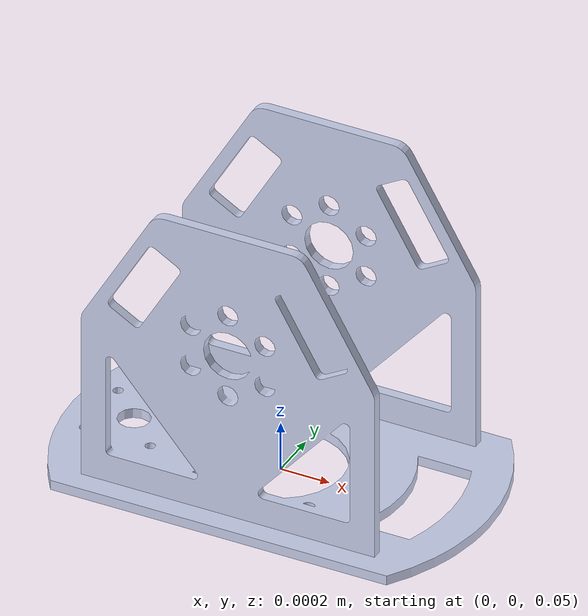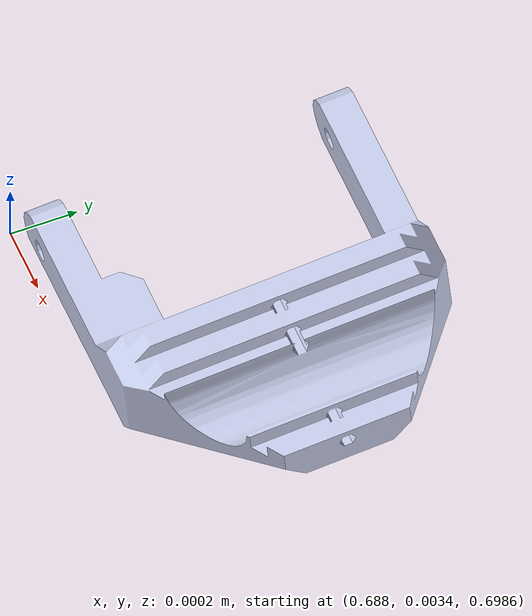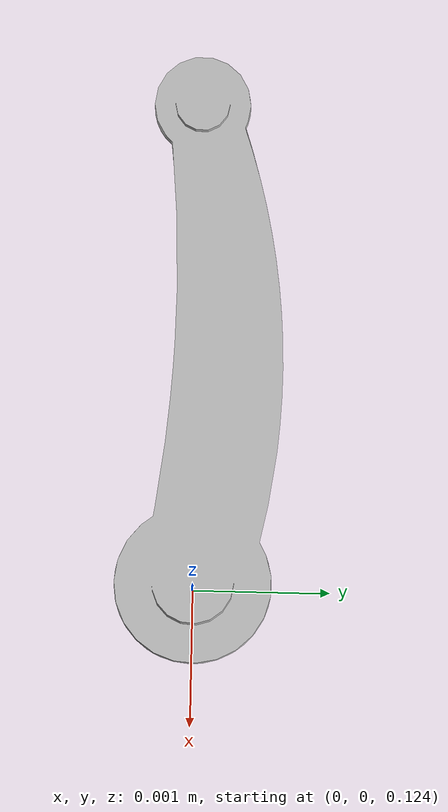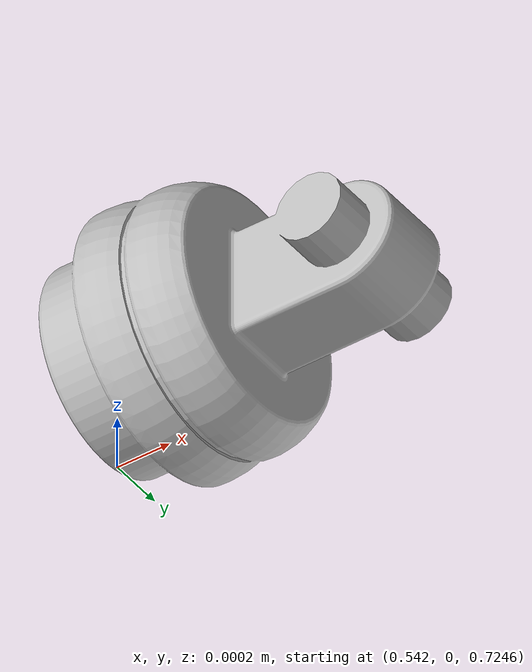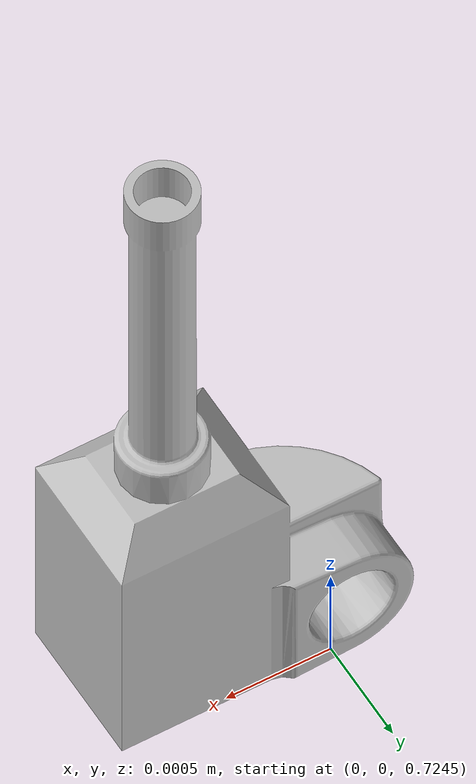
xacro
<?xml version="1.0"?>

<robot xmlns:xacro="http://www.ros.org/wiki/xacro" name="arduinobot">

  <link name="world"/>

  <link
    name="base_link">
    <inertial>
      <origin
        xyz="1.764E-11 -9.0343E-12 0.026843"
        rpy="0 0 0" />
      <mass
        value="0.26486" />
      <inertia
        ixx="0.00022452"
        ixy="1.6313E-20"
        ixz="-7.3936E-16"
        iyy="0.00022452"
        iyz="1.9242E-16"
        izz="0.00042241" />
    </inertial>
    <visual>
      <origin
        xyz="0 0 0"
        rpy="0 0 0" />
      <geometry>
        <mesh
          filename="package://arduinobot_description/meshes/base_link.STL" scale="0.01 0.01 0.01"/>
      </geometry>
      <material
        name="">
        <color
          rgba="0.75294 0.75294 0.75294 1" />
      </material>
    </visual>
    <collision>
      <origin
        xyz="0 0 0"
        rpy="0 0 0" />
      <geometry>
        <mesh
          filename="package://arduinobot_description/meshes/base_link.STL" scale="0.01 0.01 0.01"/>
      </geometry>
    </collision>
  </link>
  <joint name="virtual_joint" type="fixed">
    <parent link="world"/>
    <child link="base_link"/>
    <origin xyz="0 0 0" rpy="0 0 0"/>
  </joint>
  <link
    name="link_1">
    <inertial>
      <origin
        xyz="-0.0015612 -6.5919E-17 0.037769"
        rpy="0 0 0" />
      <mass
        value="0.12637" />
      <inertia
        ixx="0.00013841"
        ixy="-3.7232E-21"
        ixz="7.3657E-14"
        iyy="0.00028501"
        iyz="7.3636E-20"
        izz="0.00024244" />
    </inertial>
    <visual>
      <origin
        xyz="0 0 0"
        rpy="0 0 0" />
      <geometry>
        <mesh
          filename="package://arduinobot_description/meshes/link_1.STL" scale="0.01 0.01 0.01"/>
      </geometry>
      <material
        name="">
        <color
          rgba="0.79216 0.81961 0.93333 1" />
      </material>
    </visual>
    <collision>
      <origin
        xyz="0 0 0"
        rpy="0 0 0" />
      <geometry>
        <mesh
          filename="package://arduinobot_description/meshes/link_1.STL" scale="0.01 0.01 0.01"/>
      </geometry>
    </collision>
  </link>
  <joint
    name="joint_1"
    type="revolute">
    <origin
      xyz="0 0 0.05"
      rpy="0 0 0" />
    <parent
      link="base_link" />
    <child
      link="link_1" />
    <axis
      xyz="0 0 1" />
    <limit
      lower="-1.57"
      upper="1.57"
      effort="0"
      velocity="0" />
  </joint>
  <link
    name="link_2">
    <inertial>
      <origin
        xyz="-0.0024031 -0.2305 -1.2661E-14"
        rpy="0 0 0" />
      <mass
        value="1.5673" />
      <inertia
        ixx="0.012457"
        ixy="-0.00028372"
        ixz="2.8287E-19"
        iyy="0.0017814"
        iyz="2.9045E-18"
        izz="0.013454" />
    </inertial>
    <visual>
      <origin
        xyz="0 0 0"
        rpy="0 0 0" />
      <geometry>
        <mesh
          filename="package://arduinobot_description/meshes/link_2.STL" scale="0.01 0.01 0.01"/>
      </geometry>
      <material
        name="">
        <color
          rgba="0.75294 0.75294 0.75294 1" />
      </material>
    </visual>
    <collision>
      <origin
        xyz="0 0 0"
        rpy="0 0 0" />
      <geometry>
        <mesh
          filename="package://arduinobot_description/meshes/link_2.STL" scale="0.01 0.01 0.01"/>
      </geometry>
    </collision>
  </link>
  <joint
    name="joint_2"
    type="revolute">
    <origin
      xyz="0 0 0.075"
      rpy="-1.5708 0 0" />
    <parent
      link="link_1" />
    <child
      link="link_2" />
    <axis
      xyz="0 0 1" />
    <limit
      lower="0"
      upper="1.57"
      effort="0"
      velocity="0" />
  </joint>
  <link
    name="link_3">
    <inertial>
      <origin
        xyz="0.000235 0.053565 1.5898E-08"
        rpy="0 0 0" />
      <mass
        value="0.25418" />
      <inertia
        ixx="0.00065488"
        ixy="1.2999E-06"
        ixz="-2.9375E-09"
        iyy="0.00020721"
        iyz="3.0298E-14"
        izz="0.00067444" />
    </inertial>
    <visual>
      <origin
        xyz="0 0 0"
        rpy="0 0 0" />
      <geometry>
        <mesh
          filename="package://arduinobot_description/meshes/link_3.STL" scale="0.01 0.01 0.01"/>
      </geometry>
      <material
        name="">
        <color
          rgba="0.75294 0.75294 0.75294 1" />
      </material>
    </visual>
    <collision>
      <origin
        xyz="0 0 0"
        rpy="0 0 0" />
      <geometry>
        <mesh
          filename="package://arduinobot_description/meshes/link_3.STL" scale="0.01 0.01 0.01"/>
      </geometry>
    </collision>
  </link>
  <joint
    name="joint_3"
    type="revolute">
    <origin
      xyz="0 -0.6 0"
      rpy="0 0 -1.5708" />
    <parent
      link="link_2" />
    <child
      link="link_3" />
    <axis
      xyz="0 0 1" />
    <limit
      lower="0"
      upper="1.57"
      effort="0"
      velocity="0" />
  </joint>
  <link
    name="link_4">
    <inertial>
      <origin
        xyz="3.1261E-09 -2.3791E-09 0.24749"
        rpy="0 0 0" />
      <mass
        value="0.1198" />
      <inertia
        ixx="0.0012832"
        ixy="3.0175E-07"
        ixz="-1.0095E-10"
        iyy="0.0012798"
        iyz="-5.5432E-11"
        izz="4.2803E-05" />
    </inertial>
    <visual>
      <origin
        xyz="0 0 0"
        rpy="0 0 0" />
      <geometry>
        <mesh
          filename="package://arduinobot_description/meshes/link_4.STL" scale="0.01 0.01 0.01"/>
      </geometry>
      <material
        name="">
        <color
          rgba="0.75294 0.75294 0.75294 1" />
      </material>
    </visual>
    <collision>
      <origin
        xyz="0 0 0"
        rpy="0 0 0" />
      <geometry>
        <mesh
          filename="package://arduinobot_description/meshes/link_4.STL" scale="0.01 0.01 0.01"/>
      </geometry>
    </collision>
  </link>
  <joint
    name="joint_4"
    type="continuous">
    <origin
      xyz="0 0.096935 0"
      rpy="-1.5708 0 0" />
    <parent
      link="link_3" />
    <child
      link="link_4" />
    <axis
      xyz="0 0 -1" />
  </joint>
  <link
    name="link_5">
    <inertial>
      <origin
        xyz="-0.012354 0.086588 0.0010814"
        rpy="0 0 0" />
      <mass
        value="0.16939" />
      <inertia
        ixx="6.9757E-05"
        ixy="1.0166E-07"
        ixz="2.5517E-06"
        iyy="0.00014204"
        iyz="-9.0142E-09"
        izz="9.8684E-05" />
    </inertial>
    <visual>
      <origin
        xyz="0 0 0"
        rpy="0 0 0" />
      <geometry>
        <mesh
          filename="package://arduinobot_description/meshes/link_5.STL" scale="0.01 0.01 0.01"/>
      </geometry>
      <material
        name="">
        <color
          rgba="0.75294 0.75294 0.75294 1" />
      </material>
    </visual>
    <collision>
      <origin
        xyz="0 0 0"
        rpy="0 0 0" />
      <geometry>
        <mesh
          filename="package://arduinobot_description/meshes/link_5.STL" scale="0.01 0.01 0.01"/>
      </geometry>
    </collision>
  </link>
  <joint
    name="joint_5"
    type="revolute">
    <origin
      xyz="0 0 0.446"
      rpy="1.5708 0 0" />
    <parent
      link="link_4" />
    <child
      link="link_5" />
    <axis
      xyz="0.087156 0 0.99619" />
    <limit
      lower="-1.05"
      upper="1.05"
      effort="0"
      velocity="0" />
  </joint>
  <link
    name="link_6">
    <inertial>
      <origin
        xyz="0.013193 0.00095144 0.048694"
        rpy="0 0 0" />
      <mass
        value="0.45819" />
      <inertia
        ixx="0.00081316"
        ixy="3.3376E-06"
        ixz="-8.6626E-05"
        iyy="0.0007303"
        iyz="-8.9077E-06"
        izz="0.00046173" />
    </inertial>
    <visual>
      <origin
        xyz="0 0 0"
        rpy="0 0 0" />
      <geometry>
        <mesh
          filename="package://arduinobot_description/meshes/link_6.STL" scale="0.01 0.01 0.01"/>
      </geometry>
      <material
        name="">
        <color
          rgba="0.79216 0.81961 0.93333 1" />
      </material>
    </visual>
    <collision>
      <origin
        xyz="0 0 0"
        rpy="0 0 0" />
      <geometry>
        <mesh
          filename="package://arduinobot_description/meshes/link_6.STL" scale="0.01 0.01 0.01"/>
      </geometry>
    </collision>
  </link>
  <joint
    name="joint_6"
    type="continuous">
    <origin
      xyz="0 0.115 0"
      rpy="-1.5708 0 0" />
    <parent
      link="link_5" />
    <child
      link="link_6" />
    <axis
      xyz="0 0 -1" />
  </joint>
  <link
    name="link_7">
    <inertial>
      <origin
        xyz="0.0091853 0.061227 -0.0040459"
        rpy="0 0 0" />
      <mass
        value="0.13579" />
      <inertia
        ixx="0.00019716"
        ixy="-1.6744E-05"
        ixz="-1.0765E-05"
        iyy="0.00013052"
        iyz="-3.2799E-06"
        izz="9.4558E-05" />
    </inertial>
    <visual>
      <origin
        xyz="0 0 0"
        rpy="0 0 0" />
      <geometry>
        <mesh
          filename="package://arduinobot_description/meshes/link_7.STL" scale="0.01 0.01 0.01"/>
      </geometry>
      <material
        name="">
        <color
          rgba="0.79216 0.81961 0.93333 1" />
      </material>
    </visual>
    <collision>
      <origin
        xyz="0 0 0"
        rpy="0 0 0" />
      <geometry>
        <mesh
          filename="package://arduinobot_description/meshes/link_7.STL" scale="0.01 0.01 0.01"/>
      </geometry>
    </collision>
  </link>
  <joint
    name="joint_7"
    type="revolute">
    <origin
      xyz="-0.026356 -0.0039513 0.03015"
      rpy="1.5708 0 0" />
    <parent
      link="link_6" />
    <child
      link="link_7" />
    <axis
      xyz="-0.087156 0 -0.99619" />
    <limit
      lower="0"
      upper="1.05"
      effort="0"
      velocity="0" />
  </joint>
</robot>
